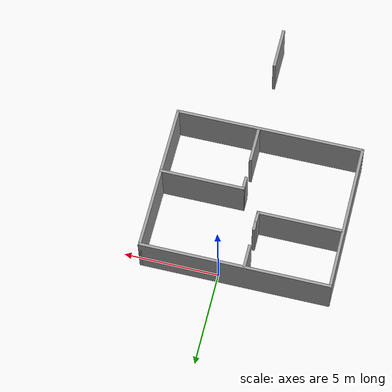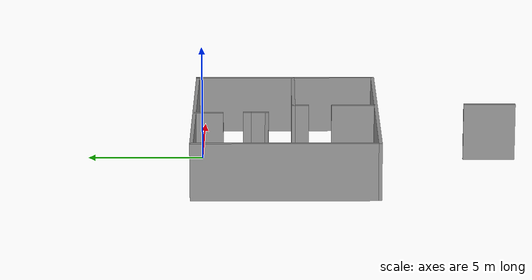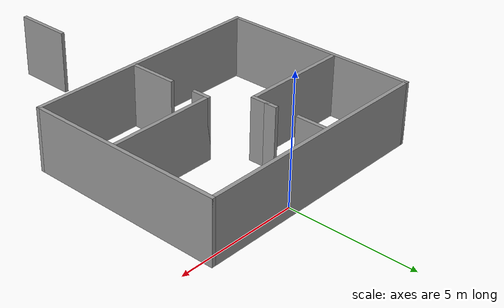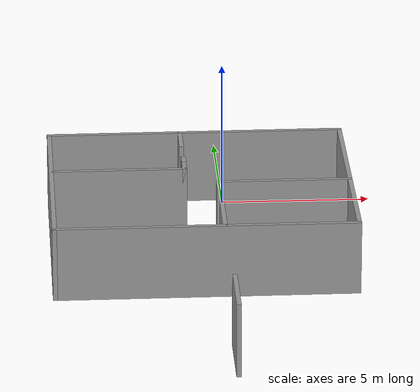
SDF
<?xml version='1.0'?>
<sdf version='1.7'>
  <model name='room1'>
    <pose>-0.916498 -6.62615 0 0 -0 0</pose>
    <link name='Wall_0'>
      <collision name='Wall_0_Collision'>
        <geometry>
          <box>
            <size>10 0.15 2.5</size>
          </box>
        </geometry>
        <pose>0 0 1.25 0 -0 0</pose>
      </collision>
      <visual name='Wall_0_Visual'>
        <pose>0 0 1.25 0 -0 0</pose>
        <geometry>
          <box>
            <size>10 0.15 2.5</size>
          </box>
        </geometry>
        <material>
          <script>
            <uri>file://media/materials/scripts/gazebo.material</uri>
            <name>Gazebo/Grey</name>
          </script>
          <ambient>1 1 1 1</ambient>
        </material>
        <meta>
          <layer>0</layer>
        </meta>
      </visual>
      <pose>0 6.9256 0 0 -0 0</pose>
    </link>
    <link name='Wall_1'>
      <collision name='Wall_1_Collision'>
        <geometry>
          <box>
            <size>8 0.15 2.5</size>
          </box>
        </geometry>
        <pose>0 0 1.25 0 -0 0</pose>
      </collision>
      <visual name='Wall_1_Visual'>
        <pose>0 0 1.25 0 -0 0</pose>
        <geometry>
          <box>
            <size>8 0.15 2.5</size>
          </box>
        </geometry>
        <material>
          <script>
            <uri>file://media/materials/scripts/gazebo.material</uri>
            <name>Gazebo/Grey</name>
          </script>
          <ambient>1 1 1 1</ambient>
        </material>
        <meta>
          <layer>0</layer>
        </meta>
      </visual>
      <pose>4.925 3.0006 0 0 -0 -1.5708</pose>
    </link>
    <link name='Wall_14'>
      <collision name='Wall_14_Collision'>
        <geometry>
          <box>
            <size>2.25 0.15 2.5</size>
          </box>
        </geometry>
        <pose>0 0 1.25 0 -0 0</pose>
      </collision>
      <visual name='Wall_14_Visual'>
        <pose>0 0 1.25 0 -0 0</pose>
        <geometry>
          <box>
            <size>2.25 0.15 2.5</size>
          </box>
        </geometry>
        <material>
          <script>
            <uri>file://media/materials/scripts/gazebo.material</uri>
            <name>Gazebo/Grey</name>
          </script>
          <ambient>1 1 1 1</ambient>
        </material>
        <meta>
          <layer>0</layer>
        </meta>
      </visual>
      <pose>0.654513 -5.8756 0 0 -0 -1.5708</pose>
    </link>
    <link name='Wall_2'>
      <collision name='Wall_2_Collision'>
        <geometry>
          <box>
            <size>10 0.15 2.5</size>
          </box>
        </geometry>
        <pose>0 0 1.25 0 -0 0</pose>
      </collision>
      <visual name='Wall_2_Visual'>
        <pose>0 0 1.25 0 -0 0</pose>
        <geometry>
          <box>
            <size>10 0.15 2.5</size>
          </box>
        </geometry>
        <material>
          <script>
            <uri>file://media/materials/scripts/gazebo.material</uri>
            <name>Gazebo/Grey</name>
          </script>
          <ambient>1 1 1 1</ambient>
        </material>
        <meta>
          <layer>0</layer>
        </meta>
      </visual>
      <pose>0 -0.924401 0 0 -0 3.14159</pose>
    </link>
    <link name='Wall_23'>
      <collision name='Wall_23_Collision'>
        <geometry>
          <box>
            <size>2 0.15 2.5</size>
          </box>
        </geometry>
        <pose>0 0 1.25 0 -0 0</pose>
      </collision>
      <visual name='Wall_23_Visual'>
        <pose>0 0 1.25 0 -0 0</pose>
        <geometry>
          <box>
            <size>2 0.15 2.5</size>
          </box>
        </geometry>
        <material>
          <script>
            <uri>file://media/materials/scripts/gazebo.material</uri>
            <name>Gazebo/Grey</name>
          </script>
          <ambient>1 1 1 1</ambient>
        </material>
        <meta>
          <layer>0</layer>
        </meta>
      </visual>
      <pose>0.58437 0.001508 0 0 -0 -1.5708</pose>
    </link>
    <link name='Wall_26'>
      <collision name='Wall_26_Collision'>
        <geometry>
          <box>
            <size>0.75 0.15 2.5</size>
          </box>
        </geometry>
        <pose>0 0 1.25 0 -0 0</pose>
      </collision>
      <visual name='Wall_26_Visual'>
        <pose>0 0 1.25 0 -0 0</pose>
        <geometry>
          <box>
            <size>0.75 0.15 2.5</size>
          </box>
        </geometry>
        <material>
          <script>
            <uri>file://media/materials/scripts/gazebo.material</uri>
            <name>Gazebo/Grey</name>
          </script>
          <ambient>1 1 1 1</ambient>
        </material>
        <meta>
          <layer>0</layer>
        </meta>
      </visual>
      <pose>0.56688 2.35802 0 0 -0 -1.5708</pose>
    </link>
    <link name='Wall_29'>
      <collision name='Wall_29_Collision'>
        <geometry>
          <box>
            <size>4.5 0.15 2.5</size>
          </box>
        </geometry>
        <pose>0 0 1.25 0 -0 0</pose>
      </collision>
      <visual name='Wall_29_Visual'>
        <pose>0 0 1.25 0 -0 0</pose>
        <geometry>
          <box>
            <size>4.5 0.15 2.5</size>
          </box>
        </geometry>
        <material>
          <script>
            <uri>file://media/materials/scripts/gazebo.material</uri>
            <name>Gazebo/Grey</name>
          </script>
          <ambient>1 1 1 1</ambient>
        </material>
        <meta>
          <layer>0</layer>
        </meta>
      </visual>
      <pose>2.74188 2.65802 0 0 -0 0</pose>
    </link>
    <link name='Wall_3'>
      <collision name='Wall_3_Collision'>
        <geometry>
          <box>
            <size>8 0.15 2.5</size>
          </box>
        </geometry>
        <pose>0 0 1.25 0 -0 0</pose>
      </collision>
      <visual name='Wall_3_Visual'>
        <pose>0 0 1.25 0 -0 0</pose>
        <geometry>
          <box>
            <size>8 0.15 2.5</size>
          </box>
        </geometry>
        <material>
          <script>
            <uri>file://media/materials/scripts/gazebo.material</uri>
            <name>Gazebo/Grey</name>
          </script>
          <ambient>1 1 1 1</ambient>
        </material>
        <meta>
          <layer>0</layer>
        </meta>
      </visual>
      <pose>-4.925 3.0006 0 0 -0 1.5708</pose>
    </link>
    <link name='Wall_31'>
      <collision name='Wall_31_Collision'>
        <geometry>
          <box>
            <size>0.75 0.15 2.5</size>
          </box>
        </geometry>
        <pose>0 0 1.25 0 -0 0</pose>
      </collision>
      <visual name='Wall_31_Visual'>
        <pose>0 0 1.25 0 -0 0</pose>
        <geometry>
          <box>
            <size>0.75 0.15 2.5</size>
          </box>
        </geometry>
        <material>
          <script>
            <uri>file://media/materials/scripts/gazebo.material</uri>
            <name>Gazebo/Grey</name>
          </script>
          <ambient>1 1 1 1</ambient>
        </material>
        <meta>
          <layer>0</layer>
        </meta>
      </visual>
      <pose>-0.489736 4.10703 0 0 -0 1.5708</pose>
    </link>
    <link name='Wall_32'>
      <collision name='Wall_32_Collision'>
        <geometry>
          <box>
            <size>0.5 0.15 2.5</size>
          </box>
        </geometry>
        <pose>0 0 1.25 0 -0 0</pose>
      </collision>
      <visual name='Wall_32_Visual'>
        <pose>0 0 1.25 0 -0 0</pose>
        <geometry>
          <box>
            <size>0.5 0.15 2.5</size>
          </box>
        </geometry>
        <material>
          <script>
            <uri>file://media/materials/scripts/gazebo.material</uri>
            <name>Gazebo/Grey</name>
          </script>
          <ambient>1 1 1 1</ambient>
        </material>
        <meta>
          <layer>0</layer>
        </meta>
      </visual>
      <pose>-0.489736 4.58203 0 0 -0 1.5708</pose>
    </link>
    <link name='Wall_6'>
      <collision name='Wall_6_Collision'>
        <geometry>
          <box>
            <size>1.25 0.15 2.5</size>
          </box>
        </geometry>
        <pose>0 0 1.25 0 -0 0</pose>
      </collision>
      <visual name='Wall_6_Visual'>
        <pose>0 0 1.25 0 -0 0</pose>
        <geometry>
          <box>
            <size>1.25 0.15 2.5</size>
          </box>
        </geometry>
        <material>
          <script>
            <uri>file://media/materials/scripts/gazebo.material</uri>
            <name>Gazebo/Grey</name>
          </script>
          <ambient>1 1 1 1</ambient>
        </material>
        <meta>
          <layer>0</layer>
        </meta>
      </visual>
      <pose>-0.500014 6.30564 0 0 -0 -1.5708</pose>
    </link>
    <link name='Wall_9'>
      <collision name='Wall_9_Collision'>
        <geometry>
          <box>
            <size>4.5 0.15 2.5</size>
          </box>
        </geometry>
        <pose>0 0 1.25 0 -0 0</pose>
      </collision>
      <visual name='Wall_9_Visual'>
        <pose>0 0 1.25 0 -0 0</pose>
        <geometry>
          <box>
            <size>4.5 0.15 2.5</size>
          </box>
        </geometry>
        <material>
          <script>
            <uri>file://media/materials/scripts/gazebo.material</uri>
            <name>Gazebo/Grey</name>
          </script>
          <ambient>1 1 1 1</ambient>
        </material>
        <meta>
          <layer>0</layer>
        </meta>
      </visual>
      <pose>-2.66474 3.80703 0 0 -0 3.14159</pose>
    </link>
    <static>1</static>
  </model>
</sdf>
